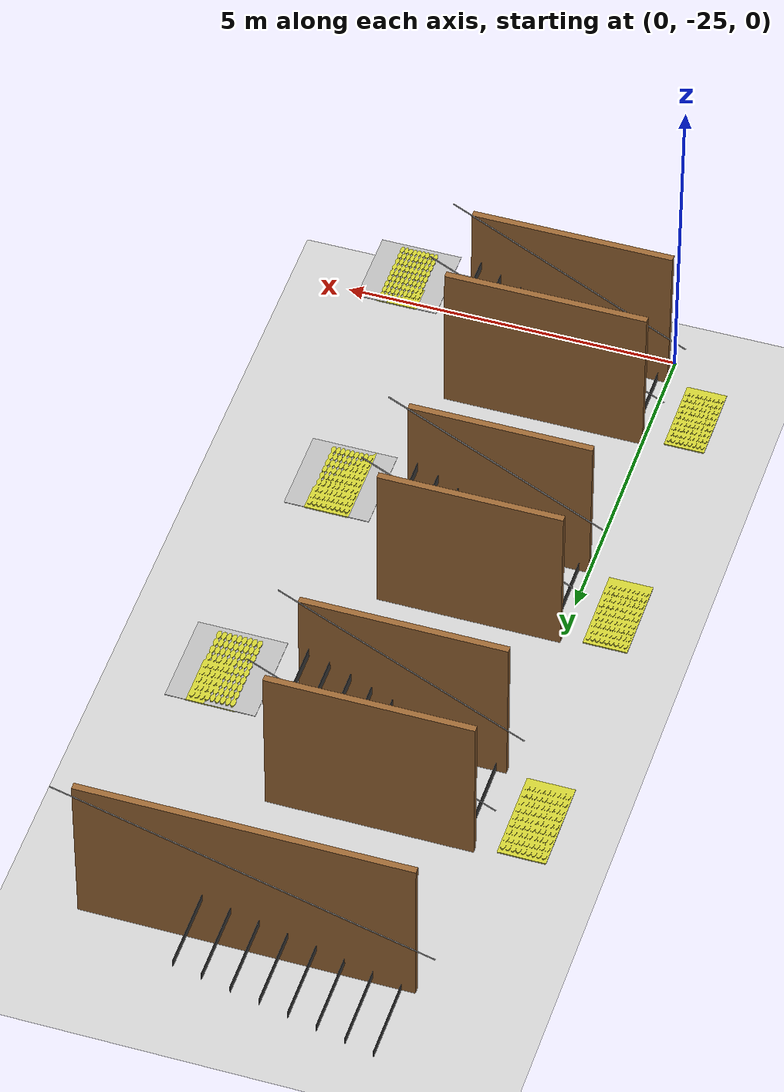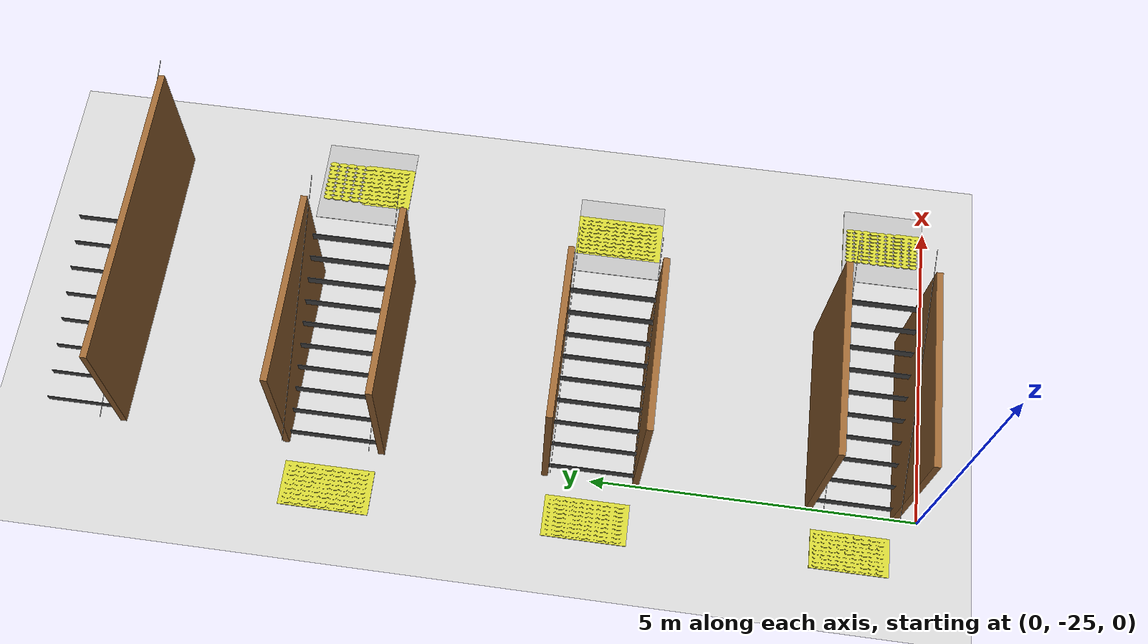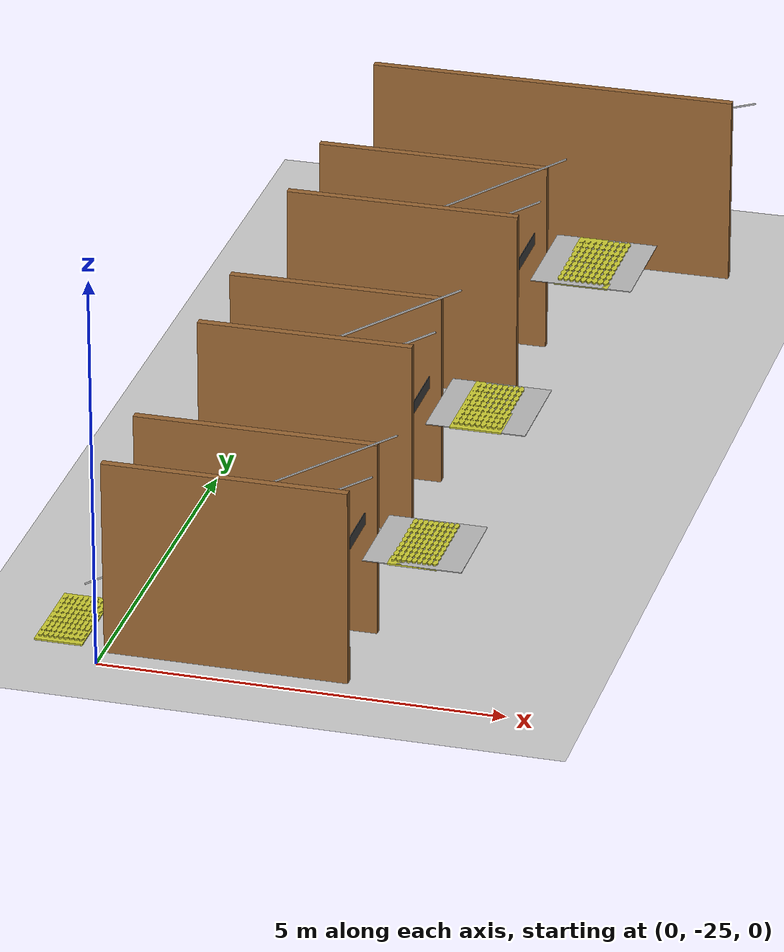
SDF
<sdf version="1.7">
 <world name="default">
  <include><uri>https://fuel.gazebosim.org/1.0/openrobotics/models/Ground%20Plane</uri></include>
  <include><uri>https://fuel.gazebosim.org/1.0/openrobotics/models/Sun</uri></include>
  <model name="handrail_handrail_334ac3bb-0b48-41e2-9271-e1b675eb571f_{'height': 0.95, 'extension_length': 0.3, 'offset_from_wall': 0.04}_aca9fab8-0f13-418a-bf42-31326757939a">
   <static>true</static>
   <pose>2.4000000000000004 -12.56 1.67 0 -0.29145679447786704 0</pose>
   <link name="link">
    <visual name="visual">
     <geometry>
      <mesh>
       <uri>model://data/world-generator/assets/handrail_unit.stl</uri>
       <scale>5.6113471242770645 0.25 0.95</scale>
      </mesh>
     </geometry>
     <material><ambient>0.7 0.7 0.7 1</ambient><diffuse>0.7 0.7 0.7 1</diffuse></material>
    </visual>
    <collision name="collision">
     <geometry><cylinder><radius>0.125</radius><length>5.6113471242770645</length></cylinder></geometry>
    </collision>
   </link>
  </model>
  <model name="riser_riser_f79dbd7d-b974-4cb8-9a55-d80f5a312021_a0191617-1c5c-4327-b5b6-209adbe51cb7">
   <static>true</static>
   <pose>0.2 -12.0 0.0 0 0 0</pose>
   <link name="link">
    <visual name="visual">
     <geometry>
      <mesh><uri>model://data/world-generator/assets/riser_unit.stl</uri><scale>1 1.2 0.12</scale></mesh>
     </geometry>
     <material><ambient>0.3 0.3 0.3 1</ambient><diffuse>0.3 0.3 0.3 1</diffuse></material>
    </visual>
    <collision name="collision"><geometry><box><size>0.01 1.2 0.12</size></box></geometry></collision>
   </link>
  </model>
  <model name="riser_riser_21510540-4ef7-4a93-9b71-e6cf3b867489_8b17b8b4-6be3-4b3f-aef8-79cb035780e8">
   <static>true</static>
   <pose>0.6000000000000001 -12.0 0.12 0 0 0</pose>
   <link name="link">
    <visual name="visual">
     <geometry>
      <mesh><uri>model://data/world-generator/assets/riser_unit.stl</uri><scale>1 1.2 0.12</scale></mesh>
     </geometry>
     <material><ambient>0.3 0.3 0.3 1</ambient><diffuse>0.3 0.3 0.3 1</diffuse></material>
    </visual>
    <collision name="collision"><geometry><box><size>0.01 1.2 0.12</size></box></geometry></collision>
   </link>
  </model>
  <model name="riser_riser_b828ba6f-296a-4e49-b509-ea6c536ff527_160650d1-56e4-458b-9ce6-3597d3bbf623">
   <static>true</static>
   <pose>1.0 -12.0 0.24 0 0 0</pose>
   <link name="link">
    <visual name="visual">
     <geometry>
      <mesh><uri>model://data/world-generator/assets/riser_unit.stl</uri><scale>1 1.2 0.12</scale></mesh>
     </geometry>
     <material><ambient>0.3 0.3 0.3 1</ambient><diffuse>0.3 0.3 0.3 1</diffuse></material>
    </visual>
    <collision name="collision"><geometry><box><size>0.01 1.2 0.12</size></box></geometry></collision>
   </link>
  </model>
  <model name="riser_riser_842ed6d8-3c86-4359-ba2c-fa71770653c6_ecccacc8-85d0-4162-8a33-9bb15306f289">
   <static>true</static>
   <pose>1.4 -12.0 0.36 0 0 0</pose>
   <link name="link">
    <visual name="visual">
     <geometry>
      <mesh><uri>model://data/world-generator/assets/riser_unit.stl</uri><scale>1 1.2 0.12</scale></mesh>
     </geometry>
     <material><ambient>0.3 0.3 0.3 1</ambient><diffuse>0.3 0.3 0.3 1</diffuse></material>
    </visual>
    <collision name="collision"><geometry><box><size>0.01 1.2 0.12</size></box></geometry></collision>
   </link>
  </model>
  <model name="riser_riser_06faf2bb-a8ae-452b-b35f-16a55bf3dbd4_0b2991ee-bf35-4310-94f1-5bc69cb6ed1d">
   <static>true</static>
   <pose>1.7999999999999998 -12.0 0.48 0 0 0</pose>
   <link name="link">
    <visual name="visual">
     <geometry>
      <mesh><uri>model://data/world-generator/assets/riser_unit.stl</uri><scale>1 1.2 0.12</scale></mesh>
     </geometry>
     <material><ambient>0.3 0.3 0.3 1</ambient><diffuse>0.3 0.3 0.3 1</diffuse></material>
    </visual>
    <collision name="collision"><geometry><box><size>0.01 1.2 0.12</size></box></geometry></collision>
   </link>
  </model>
  <model name="riser_riser_a50d08cd-4d48-4264-835a-82110000b588_0a347023-3128-418d-9c5e-b3a1e66e00ed">
   <static>true</static>
   <pose>2.1999999999999997 -12.0 0.6 0 0 0</pose>
   <link name="link">
    <visual name="visual">
     <geometry>
      <mesh><uri>model://data/world-generator/assets/riser_unit.stl</uri><scale>1 1.2 0.12</scale></mesh>
     </geometry>
     <material><ambient>0.3 0.3 0.3 1</ambient><diffuse>0.3 0.3 0.3 1</diffuse></material>
    </visual>
    <collision name="collision"><geometry><box><size>0.01 1.2 0.12</size></box></geometry></collision>
   </link>
  </model>
  <model name="riser_riser_fd55b394-43c7-4451-9429-861714e7d709_d34aa84f-d520-420e-beb8-4353c743256c">
   <static>true</static>
   <pose>2.5999999999999996 -12.0 0.72 0 0 0</pose>
   <link name="link">
    <visual name="visual">
     <geometry>
      <mesh><uri>model://data/world-generator/assets/riser_unit.stl</uri><scale>1 1.2 0.12</scale></mesh>
     </geometry>
     <material><ambient>0.3 0.3 0.3 1</ambient><diffuse>0.3 0.3 0.3 1</diffuse></material>
    </visual>
    <collision name="collision"><geometry><box><size>0.01 1.2 0.12</size></box></geometry></collision>
   </link>
  </model>
  <model name="riser_riser_63169348-e5a6-4635-9f59-b612e62b5f37_17200672-e04e-4297-bf2a-463eca0cc338">
   <static>true</static>
   <pose>2.9999999999999996 -12.0 0.84 0 0 0</pose>
   <link name="link">
    <visual name="visual">
     <geometry>
      <mesh><uri>model://data/world-generator/assets/riser_unit.stl</uri><scale>1 1.2 0.12</scale></mesh>
     </geometry>
     <material><ambient>0.3 0.3 0.3 1</ambient><diffuse>0.3 0.3 0.3 1</diffuse></material>
    </visual>
    <collision name="collision"><geometry><box><size>0.01 1.2 0.12</size></box></geometry></collision>
   </link>
  </model>
  <model name="wall_stairs_invalid_3_left_8c227ee2-c0b2-423a-83b2-b73c16e25cb3">
   <static>true</static>
   <pose>2.4000000000000004 -12.65 0.0 0 0 0.0</pose>
   <link name="link">
    <visual name="visual">
     <geometry>
      <mesh><uri>model://data/world-generator/assets/wall_unit.stl</uri><scale>4.800000000000001 1 1</scale></mesh>
     </geometry>
     <material><ambient>0.6 0.4 0.2 1</ambient><diffuse>0.6 0.4 0.2 1</diffuse></material>
    </visual>
    <collision name="collision"><geometry><box><size>4.800000000000001 0.1 1.2</size></box></geometry></collision>
   </link>
  </model>
  <model name="tactile_strip_tactile_strip_before_f980ff0a-83e7-4e4f-a77f-460416cf23fe_f4d1d756-e918-477a-826d-30c0bc44d720">
   <static>true</static>
   <pose>-0.6499999999999999 -16.0 0.0 0 0 0</pose>
   <link name="link">
    <visual name="visual">
     <geometry>
      <mesh><uri>model://data/world-generator/assets/tactile_strip_unit.stl</uri><scale>0.7 1.4 1</scale></mesh>
     </geometry>
     <material><ambient>0.8 0.8 0.2 1</ambient><diffuse>0.8 0.8 0.2 1</diffuse></material>
    </visual>
    <collision name="collision"><geometry><box><size>0.7 1.4 0.02</size></box></geometry></collision>
   </link>
  </model>
  <model name="tactile_strip_tactile_strip_after_f980ff0a-83e7-4e4f-a77f-460416cf23fe_c9d3cc64-1aaf-4768-9695-87c45fe683e1">
   <static>true</static>
   <pose>3.7999999999999994 -16.0 1.5999999999999999 0 0 0</pose>
   <link name="link">
    <visual name="visual">
     <geometry>
      <mesh><uri>model://data/world-generator/assets/tactile_strip_unit.stl</uri><scale>0.7 1.4 1</scale></mesh>
     </geometry>
     <material><ambient>0.8 0.8 0.2 1</ambient><diffuse>0.8 0.8 0.2 1</diffuse></material>
    </visual>
    <collision name="collision"><geometry><box><size>0.7 1.4 0.02</size></box></geometry></collision>
   </link>
  </model>
  <model name="handrail_handrail_f980ff0a-83e7-4e4f-a77f-460416cf23fe_{'height': 0.95, 'extension_length': 0.3, 'offset_from_wall': 0.04}_1cb58210-cbf6-4c32-b300-48deeef40401">
   <static>true</static>
   <pose>1.5 -16.66 1.75 0 -0.48995732625372834 0</pose>
   <link name="link">
    <visual name="visual">
     <geometry>
      <mesh><uri>model://data/world-generator/assets/handrail_unit.stl</uri><scale>4.0 0.25 0.95</scale></mesh>
     </geometry>
     <material><ambient>0.7 0.7 0.7 1</ambient><diffuse>0.7 0.7 0.7 1</diffuse></material>
    </visual>
    <collision name="collision">
     <geometry><cylinder><radius>0.125</radius><length>4.0</length></cylinder></geometry>
    </collision>
   </link>
  </model>
  <model name="handrail_handrail_f980ff0a-83e7-4e4f-a77f-460416cf23fe_{'height': 0.95, 'extension_length': 0.3, 'offset_from_wall': 0.04}_f57e1e76-4f27-4154-9580-fc464d5179af">
   <static>true</static>
   <pose>1.5 -15.34 1.75 0 -0.48995732625372834 0</pose>
   <link name="link">
    <visual name="visual">
     <geometry>
      <mesh><uri>model://data/world-generator/assets/handrail_unit.stl</uri><scale>4.0 0.25 0.95</scale></mesh>
     </geometry>
     <material><ambient>0.7 0.7 0.7 1</ambient><diffuse>0.7 0.7 0.7 1</diffuse></material>
    </visual>
    <collision name="collision">
     <geometry><cylinder><radius>0.125</radius><length>4.0</length></cylinder></geometry>
    </collision>
   </link>
  </model>
  <model name="riser_riser_1db3bb87-cb92-468d-a342-87a92e6d8c9d_a11fb29d-1369-4ad9-9c97-307b21da97fc">
   <static>true</static>
   <pose>0.15 -16.0 0.0 0 0 0</pose>
   <link name="link">
    <visual name="visual">
     <geometry>
      <mesh><uri>model://data/world-generator/assets/riser_unit.stl</uri><scale>1 1.4 0.16</scale></mesh>
     </geometry>
     <material><ambient>0.3 0.3 0.3 1</ambient><diffuse>0.3 0.3 0.3 1</diffuse></material>
    </visual>
    <collision name="collision"><geometry><box><size>0.01 1.4 0.16</size></box></geometry></collision>
   </link>
  </model>
  <model name="riser_riser_88b35c26-6036-4f28-8fb5-44b0a8a7183d_dd4b3f6b-e282-42fe-9318-3d303463e7ab">
   <static>true</static>
   <pose>0.44999999999999996 -16.0 0.16 0 0 0</pose>
   <link name="link">
    <visual name="visual">
     <geometry>
      <mesh><uri>model://data/world-generator/assets/riser_unit.stl</uri><scale>1 1.4 0.16</scale></mesh>
     </geometry>
     <material><ambient>0.3 0.3 0.3 1</ambient><diffuse>0.3 0.3 0.3 1</diffuse></material>
    </visual>
    <collision name="collision"><geometry><box><size>0.01 1.4 0.16</size></box></geometry></collision>
   </link>
  </model>
  <model name="riser_riser_a01ec06b-ca2b-49d8-ab6f-ffe775830d87_aa0fa8bd-2345-4b22-8f22-1ac94c31dfe3">
   <static>true</static>
   <pose>0.75 -16.0 0.32 0 0 0</pose>
   <link name="link">
    <visual name="visual">
     <geometry>
      <mesh><uri>model://data/world-generator/assets/riser_unit.stl</uri><scale>1 1.4 0.16</scale></mesh>
     </geometry>
     <material><ambient>0.3 0.3 0.3 1</ambient><diffuse>0.3 0.3 0.3 1</diffuse></material>
    </visual>
    <collision name="collision"><geometry><box><size>0.01 1.4 0.16</size></box></geometry></collision>
   </link>
  </model>
  <model name="riser_riser_ee9fe814-f8a6-47ad-b049-17e21d3dea5f_ebc83158-633d-47ed-98e0-48ae4ff6e9e4">
   <static>true</static>
   <pose>1.05 -16.0 0.48 0 0 0</pose>
   <link name="link">
    <visual name="visual">
     <geometry>
      <mesh><uri>model://data/world-generator/assets/riser_unit.stl</uri><scale>1 1.4 0.16</scale></mesh>
     </geometry>
     <material><ambient>0.3 0.3 0.3 1</ambient><diffuse>0.3 0.3 0.3 1</diffuse></material>
    </visual>
    <collision name="collision"><geometry><box><size>0.01 1.4 0.16</size></box></geometry></collision>
   </link>
  </model>
  <model name="riser_riser_ed288e78-264d-450a-9d46-a66aeb1e32d1_4d4afe49-08f4-4eb1-98e7-8fc1a9320f2b">
   <static>true</static>
   <pose>1.35 -16.0 0.64 0 0 0</pose>
   <link name="link">
    <visual name="visual">
     <geometry>
      <mesh><uri>model://data/world-generator/assets/riser_unit.stl</uri><scale>1 1.4 0.16</scale></mesh>
     </geometry>
     <material><ambient>0.3 0.3 0.3 1</ambient><diffuse>0.3 0.3 0.3 1</diffuse></material>
    </visual>
    <collision name="collision"><geometry><box><size>0.01 1.4 0.16</size></box></geometry></collision>
   </link>
  </model>
  <model name="riser_riser_3ddf61e4-0bbf-4f8a-95f0-f3d46b866e3c_efdc3010-9175-4f2b-9fc8-2595e9986a90">
   <static>true</static>
   <pose>1.6500000000000001 -16.0 0.8 0 0 0</pose>
   <link name="link">
    <visual name="visual">
     <geometry>
      <mesh><uri>model://data/world-generator/assets/riser_unit.stl</uri><scale>1 1.4 0.16</scale></mesh>
     </geometry>
     <material><ambient>0.3 0.3 0.3 1</ambient><diffuse>0.3 0.3 0.3 1</diffuse></material>
    </visual>
    <collision name="collision"><geometry><box><size>0.01 1.4 0.16</size></box></geometry></collision>
   </link>
  </model>
  <model name="riser_riser_c876d133-7099-4fd6-a2e0-2b4f10240c09_cdbbe05a-69ec-4d2c-aea9-51be4c1e96a7">
   <static>true</static>
   <pose>1.9500000000000002 -16.0 0.9600000000000001 0 0 0</pose>
   <link name="link">
    <visual name="visual">
     <geometry>
      <mesh><uri>model://data/world-generator/assets/riser_unit.stl</uri><scale>1 1.4 0.16</scale></mesh>
     </geometry>
     <material><ambient>0.3 0.3 0.3 1</ambient><diffuse>0.3 0.3 0.3 1</diffuse></material>
    </visual>
    <collision name="collision"><geometry><box><size>0.01 1.4 0.16</size></box></geometry></collision>
   </link>
  </model>
  <model name="riser_riser_84be6132-741f-4fec-a031-4b10a25c0bce_9439507c-3eea-4be6-8208-6b8e9fff62e7">
   <static>true</static>
   <pose>2.25 -16.0 1.12 0 0 0</pose>
   <link name="link">
    <visual name="visual">
     <geometry>
      <mesh><uri>model://data/world-generator/assets/riser_unit.stl</uri><scale>1 1.4 0.16</scale></mesh>
     </geometry>
     <material><ambient>0.3 0.3 0.3 1</ambient><diffuse>0.3 0.3 0.3 1</diffuse></material>
    </visual>
    <collision name="collision"><geometry><box><size>0.01 1.4 0.16</size></box></geometry></collision>
   </link>
  </model>
  <model name="riser_riser_c882f34b-14e4-40c0-ad63-9f751554914e_6eddcc3c-42fd-4fb4-946f-3e9c09017f69">
   <static>true</static>
   <pose>2.55 -16.0 1.28 0 0 0</pose>
   <link name="link">
    <visual name="visual">
     <geometry>
      <mesh><uri>model://data/world-generator/assets/riser_unit.stl</uri><scale>1 1.4 0.16</scale></mesh>
     </geometry>
     <material><ambient>0.3 0.3 0.3 1</ambient><diffuse>0.3 0.3 0.3 1</diffuse></material>
    </visual>
    <collision name="collision"><geometry><box><size>0.01 1.4 0.16</size></box></geometry></collision>
   </link>
  </model>
  <model name="riser_riser_09f16ea2-fef2-4b60-8272-19d955b08c25_8408a1b2-b086-4b69-b4c3-79553a4bfa87">
   <static>true</static>
   <pose>2.8499999999999996 -16.0 1.44 0 0 0</pose>
   <link name="link">
    <visual name="visual">
     <geometry>
      <mesh><uri>model://data/world-generator/assets/riser_unit.stl</uri><scale>1 1.4 0.16</scale></mesh>
     </geometry>
     <material><ambient>0.3 0.3 0.3 1</ambient><diffuse>0.3 0.3 0.3 1</diffuse></material>
    </visual>
    <collision name="collision"><geometry><box><size>0.01 1.4 0.16</size></box></geometry></collision>
   </link>
  </model>
  <model name="wall_stairs_invalid_4_left_a44f4d51-66cd-4ce5-b765-ab3804b780f1">
   <static>true</static>
   <pose>1.5 -16.75 0.0 0 0 0.0</pose>
   <link name="link">
    <visual name="visual">
     <geometry>
      <mesh><uri>model://data/world-generator/assets/wall_unit.stl</uri><scale>3.0 1 1</scale></mesh>
     </geometry>
     <material><ambient>0.6 0.4 0.2 1</ambient><diffuse>0.6 0.4 0.2 1</diffuse></material>
    </visual>
    <collision name="collision"><geometry><box><size>3.0 0.1 1.2</size></box></geometry></collision>
   </link>
  </model>
  <model name="wall_stairs_invalid_4_right_65ad76f0-6225-4ed8-9b1c-0419573217d4">
   <static>true</static>
   <pose>1.5 -15.25 0.0 0 0 0.0</pose>
   <link name="link">
    <visual name="visual">
     <geometry>
      <mesh><uri>model://data/world-generator/assets/wall_unit.stl</uri><scale>3.0 1 1</scale></mesh>
     </geometry>
     <material><ambient>0.6 0.4 0.2 1</ambient><diffuse>0.6 0.4 0.2 1</diffuse></material>
    </visual>
    <collision name="collision"><geometry><box><size>3.0 0.1 1.2</size></box></geometry></collision>
   </link>
  </model>
  <model name="platform_stairs_invalid_4_landing_c2bdfd01-fa9d-412c-a99a-f1f230a26d4c">
   <static>true</static>
   <pose>3.7999999999999994 -16.0 1.5999999999999999 0 0 0</pose>
   <link name="link">
    <visual name="visual">
     <geometry>
      <mesh>
       <uri>model://data/world-generator/assets/platform_unit.stl</uri>
       <scale>1.2999999999999998 1.4 1</scale>
      </mesh>
     </geometry>
    </visual>
    <collision name="collision">
     <geometry><box><size>1.2999999999999998 1.4 0.01</size></box></geometry>
    </collision>
   </link>
  </model>
  <model name="tactile_strip_tactile_strip_before_17d97e36-98d3-48f7-ad10-50356535565b_ecd95b5c-7429-4b46-bb8f-fcdc3d8025f3">
   <static>true</static>
   <pose>-0.625 -20.0 0.0 0 0 0</pose>
   <link name="link">
    <visual name="visual">
     <geometry>
      <mesh><uri>model://data/world-generator/assets/tactile_strip_unit.stl</uri><scale>0.65 1.3 1</scale></mesh>
     </geometry>
     <material><ambient>0.8 0.8 0.2 1</ambient><diffuse>0.8 0.8 0.2 1</diffuse></material>
    </visual>
    <collision name="collision"><geometry><box><size>0.65 1.3 0.02</size></box></geometry></collision>
   </link>
  </model>
  <model name="tactile_strip_tactile_strip_after_17d97e36-98d3-48f7-ad10-50356535565b_b5370adf-9b1d-4676-9c9c-fc94aae698f5">
   <static>true</static>
   <pose>3.4749999999999996 -20.0 1.44 0 0 0</pose>
   <link name="link">
    <visual name="visual">
     <geometry>
      <mesh><uri>model://data/world-generator/assets/tactile_strip_unit.stl</uri><scale>0.65 1.3 1</scale></mesh>
     </geometry>
     <material><ambient>0.8 0.8 0.2 1</ambient><diffuse>0.8 0.8 0.2 1</diffuse></material>
    </visual>
    <collision name="collision"><geometry><box><size>0.65 1.3 0.02</size></box></geometry></collision>
   </link>
  </model>
  <model name="handrail_handrail_17d97e36-98d3-48f7-ad10-50356535565b_{'height': 1.1, 'extension_length': 0.3, 'offset_from_wall': 0.04}_0c5d9911-2ebc-4bc7-96f0-71d6635490e0">
   <static>true</static>
   <pose>1.3499999999999999 -20.61 1.82 0 -0.48995732625372834 0</pose>
   <link name="link">
    <visual name="visual">
     <geometry>
      <mesh>
       <uri>model://data/world-generator/assets/handrail_unit.stl</uri>
       <scale>3.6599999999999997 0.25 1.1</scale>
      </mesh>
     </geometry>
     <material><ambient>0.7 0.7 0.7 1</ambient><diffuse>0.7 0.7 0.7 1</diffuse></material>
    </visual>
    <collision name="collision">
     <geometry><cylinder><radius>0.125</radius><length>3.6599999999999997</length></cylinder></geometry>
    </collision>
   </link>
  </model>
  <model name="handrail_handrail_17d97e36-98d3-48f7-ad10-50356535565b_{'height': 1.1, 'extension_length': 0.3, 'offset_from_wall': 0.04}_905bee03-385a-4e38-8609-c5ccc538856e">
   <static>true</static>
   <pose>1.3499999999999999 -19.39 1.82 0 -0.48995732625372834 0</pose>
   <link name="link">
    <visual name="visual">
     <geometry>
      <mesh>
       <uri>model://data/world-generator/assets/handrail_unit.stl</uri>
       <scale>3.6599999999999997 0.25 1.1</scale>
      </mesh>
     </geometry>
     <material><ambient>0.7 0.7 0.7 1</ambient><diffuse>0.7 0.7 0.7 1</diffuse></material>
    </visual>
    <collision name="collision">
     <geometry><cylinder><radius>0.125</radius><length>3.6599999999999997</length></cylinder></geometry>
    </collision>
   </link>
  </model>
  <model name="riser_riser_137b0e59-a008-4633-bdee-bb1a7d8c9170_21d0a4cc-1b57-49a1-bc43-f871a286d02f">
   <static>true</static>
   <pose>0.15 -20.0 0.0 0 0 0</pose>
   <link name="link">
    <visual name="visual">
     <geometry>
      <mesh><uri>model://data/world-generator/assets/riser_unit.stl</uri><scale>1 1.3 0.16</scale></mesh>
     </geometry>
     <material><ambient>0.3 0.3 0.3 1</ambient><diffuse>0.3 0.3 0.3 1</diffuse></material>
    </visual>
    <collision name="collision"><geometry><box><size>0.01 1.3 0.16</size></box></geometry></collision>
   </link>
  </model>
  <model name="riser_riser_bdcc62ba-e1b1-455b-8eca-cc587fe8a232_1645f188-4b3a-4723-9e87-ff1708fc138d">
   <static>true</static>
   <pose>0.44999999999999996 -20.0 0.16 0 0 0</pose>
   <link name="link">
    <visual name="visual">
     <geometry>
      <mesh><uri>model://data/world-generator/assets/riser_unit.stl</uri><scale>1 1.3 0.16</scale></mesh>
     </geometry>
     <material><ambient>0.3 0.3 0.3 1</ambient><diffuse>0.3 0.3 0.3 1</diffuse></material>
    </visual>
    <collision name="collision"><geometry><box><size>0.01 1.3 0.16</size></box></geometry></collision>
   </link>
  </model>
  <model name="riser_riser_66db1ea3-4a97-4456-a0d7-7994261e3e64_29c66f40-6045-4efa-a524-1afe57abbeb0">
   <static>true</static>
   <pose>0.75 -20.0 0.32 0 0 0</pose>
   <link name="link">
    <visual name="visual">
     <geometry>
      <mesh><uri>model://data/world-generator/assets/riser_unit.stl</uri><scale>1 1.3 0.16</scale></mesh>
     </geometry>
     <material><ambient>0.3 0.3 0.3 1</ambient><diffuse>0.3 0.3 0.3 1</diffuse></material>
    </visual>
    <collision name="collision"><geometry><box><size>0.01 1.3 0.16</size></box></geometry></collision>
   </link>
  </model>
  <model name="riser_riser_94cd9eb9-e1f0-424c-8654-578d6db4f332_9c316746-e40c-42de-b974-c6c38b24c356">
   <static>true</static>
   <pose>1.05 -20.0 0.48 0 0 0</pose>
   <link name="link">
    <visual name="visual">
     <geometry>
      <mesh><uri>model://data/world-generator/assets/riser_unit.stl</uri><scale>1 1.3 0.16</scale></mesh>
     </geometry>
     <material><ambient>0.3 0.3 0.3 1</ambient><diffuse>0.3 0.3 0.3 1</diffuse></material>
    </visual>
    <collision name="collision"><geometry><box><size>0.01 1.3 0.16</size></box></geometry></collision>
   </link>
  </model>
  <model name="riser_riser_51eec882-dac0-46bf-b1c7-6e1d90e02942_10997c99-a3b5-496f-aee3-34d15c7764ec">
   <static>true</static>
   <pose>1.35 -20.0 0.64 0 0 0</pose>
   <link name="link">
    <visual name="visual">
     <geometry>
      <mesh><uri>model://data/world-generator/assets/riser_unit.stl</uri><scale>1 1.3 0.16</scale></mesh>
     </geometry>
     <material><ambient>0.3 0.3 0.3 1</ambient><diffuse>0.3 0.3 0.3 1</diffuse></material>
    </visual>
    <collision name="collision"><geometry><box><size>0.01 1.3 0.16</size></box></geometry></collision>
   </link>
  </model>
  <model name="riser_riser_82f6e962-368e-4459-837c-626dca24f584_ccb75082-a873-43da-a75f-3f6454a06a97">
   <static>true</static>
   <pose>1.6500000000000001 -20.0 0.8 0 0 0</pose>
   <link name="link">
    <visual name="visual">
     <geometry>
      <mesh><uri>model://data/world-generator/assets/riser_unit.stl</uri><scale>1 1.3 0.16</scale></mesh>
     </geometry>
     <material><ambient>0.3 0.3 0.3 1</ambient><diffuse>0.3 0.3 0.3 1</diffuse></material>
    </visual>
    <collision name="collision"><geometry><box><size>0.01 1.3 0.16</size></box></geometry></collision>
   </link>
  </model>
  <model name="riser_riser_c8289034-6faf-4676-bfbb-874d23f0d86a_b2eaaa3d-3aac-4211-a76b-1f4db37555b9">
   <static>true</static>
   <pose>1.9500000000000002 -20.0 0.9600000000000001 0 0 0</pose>
   <link name="link">
    <visual name="visual">
     <geometry>
      <mesh><uri>model://data/world-generator/assets/riser_unit.stl</uri><scale>1 1.3 0.16</scale></mesh>
     </geometry>
     <material><ambient>0.3 0.3 0.3 1</ambient><diffuse>0.3 0.3 0.3 1</diffuse></material>
    </visual>
    <collision name="collision"><geometry><box><size>0.01 1.3 0.16</size></box></geometry></collision>
   </link>
  </model>
  <model name="riser_riser_3601f0ac-f078-436f-b78f-3630b17f7193_7124fa93-f64e-4806-8bf2-9a58033023be">
   <static>true</static>
   <pose>2.25 -20.0 1.12 0 0 0</pose>
   <link name="link">
    <visual name="visual">
     <geometry>
      <mesh><uri>model://data/world-generator/assets/riser_unit.stl</uri><scale>1 1.3 0.16</scale></mesh>
     </geometry>
     <material><ambient>0.3 0.3 0.3 1</ambient><diffuse>0.3 0.3 0.3 1</diffuse></material>
    </visual>
    <collision name="collision"><geometry><box><size>0.01 1.3 0.16</size></box></geometry></collision>
   </link>
  </model>
  <model name="riser_riser_ae143249-31c4-421c-a638-cd0baa6722ac_1386e4b8-d808-4e03-abcc-78edf9fe164e">
   <static>true</static>
   <pose>2.55 -20.0 1.28 0 0 0</pose>
   <link name="link">
    <visual name="visual">
     <geometry>
      <mesh><uri>model://data/world-generator/assets/riser_unit.stl</uri><scale>1 1.3 0.16</scale></mesh>
     </geometry>
     <material><ambient>0.3 0.3 0.3 1</ambient><diffuse>0.3 0.3 0.3 1</diffuse></material>
    </visual>
    <collision name="collision"><geometry><box><size>0.01 1.3 0.16</size></box></geometry></collision>
   </link>
  </model>
  <model name="wall_stairs_invalid_5_left_76e33e90-2140-4e45-ac1c-8b3dace37bd2">
   <static>true</static>
   <pose>1.3499999999999999 -20.7 0.0 0 0 0.0</pose>
   <link name="link">
    <visual name="visual">
     <geometry>
      <mesh><uri>model://data/world-generator/assets/wall_unit.stl</uri><scale>2.6999999999999997 1 1</scale></mesh>
     </geometry>
     <material><ambient>0.6 0.4 0.2 1</ambient><diffuse>0.6 0.4 0.2 1</diffuse></material>
    </visual>
    <collision name="collision">
     <geometry><box><size>2.6999999999999997 0.1 1.2</size></box></geometry>
    </collision>
   </link>
  </model>
  <model name="wall_stairs_invalid_5_right_add77634-5a95-49e4-b9ae-f48edf288099">
   <static>true</static>
   <pose>1.3499999999999999 -19.3 0.0 0 0 0.0</pose>
   <link name="link">
    <visual name="visual">
     <geometry>
      <mesh><uri>model://data/world-generator/assets/wall_unit.stl</uri><scale>2.6999999999999997 1 1</scale></mesh>
     </geometry>
     <material><ambient>0.6 0.4 0.2 1</ambient><diffuse>0.6 0.4 0.2 1</diffuse></material>
    </visual>
    <collision name="collision">
     <geometry><box><size>2.6999999999999997 0.1 1.2</size></box></geometry>
    </collision>
   </link>
  </model>
  <model name="platform_stairs_invalid_5_landing_11b71142-f572-496e-948b-2a8f371c93f8">
   <static>true</static>
   <pose>3.4749999999999996 -20.0 1.44 0 0 0</pose>
   <link name="link">
    <visual name="visual">
     <geometry>
      <mesh><uri>model://data/world-generator/assets/platform_unit.stl</uri><scale>1.25 1.3 1</scale></mesh>
     </geometry>
    </visual>
    <collision name="collision"><geometry><box><size>1.25 1.3 0.01</size></box></geometry></collision>
   </link>
  </model>
  <model name="tactile_strip_tactile_strip_before_2b56a6f0-3218-41c2-86fc-c0dd96b93221_ab39e7c2-6d45-466a-8c99-5f4edc02b914">
   <static>true</static>
   <pose>-0.6 -24.0 0.0 0 0 0</pose>
   <link name="link">
    <visual name="visual">
     <geometry>
      <mesh><uri>model://data/world-generator/assets/tactile_strip_unit.stl</uri><scale>0.6 1.2 1</scale></mesh>
     </geometry>
     <material><ambient>0.8 0.8 0.2 1</ambient><diffuse>0.8 0.8 0.2 1</diffuse></material>
    </visual>
    <collision name="collision"><geometry><box><size>0.6 1.2 0.02</size></box></geometry></collision>
   </link>
  </model>
  <model name="tactile_strip_tactile_strip_after_2b56a6f0-3218-41c2-86fc-c0dd96b93221_484cfbb2-44c5-42c4-9bce-44c3e6b859d5">
   <static>true</static>
   <pose>3.749999999999999 -24.0 1.5999999999999999 0 0 0</pose>
   <link name="link">
    <visual name="visual">
     <geometry>
      <mesh><uri>model://data/world-generator/assets/tactile_strip_unit.stl</uri><scale>0.6 1.2 1</scale></mesh>
     </geometry>
     <material><ambient>0.8 0.8 0.2 1</ambient><diffuse>0.8 0.8 0.2 1</diffuse></material>
    </visual>
    <collision name="collision"><geometry><box><size>0.6 1.2 0.02</size></box></geometry></collision>
   </link>
  </model>
  <model name="handrail_handrail_2b56a6f0-3218-41c2-86fc-c0dd96b93221_{'height': 0.95, 'extension_length': 0.3, 'offset_from_wall': 0.04}_a9e6002a-669d-4ecb-bc29-3dc651953296">
   <static>true</static>
   <pose>1.5 -24.560000000000002 1.75 0 -0.48995732625372834 0</pose>
   <link name="link">
    <visual name="visual">
     <geometry>
      <mesh><uri>model://data/world-generator/assets/handrail_unit.stl</uri><scale>4.0 0.25 0.95</scale></mesh>
     </geometry>
     <material><ambient>0.7 0.7 0.7 1</ambient><diffuse>0.7 0.7 0.7 1</diffuse></material>
    </visual>
    <collision name="collision">
     <geometry><cylinder><radius>0.125</radius><length>4.0</length></cylinder></geometry>
    </collision>
   </link>
  </model>
  <model name="handrail_handrail_2b56a6f0-3218-41c2-86fc-c0dd96b93221_{'height': 0.95, 'extension_length': 0.3, 'offset_from_wall': 0.04}_4619990d-1c4b-4b35-a17a-43257b215d89">
   <static>true</static>
   <pose>1.5 -23.439999999999998 1.75 0 -0.48995732625372834 0</pose>
   <link name="link">
    <visual name="visual">
     <geometry>
      <mesh><uri>model://data/world-generator/assets/handrail_unit.stl</uri><scale>4.0 0.25 0.95</scale></mesh>
     </geometry>
     <material><ambient>0.7 0.7 0.7 1</ambient><diffuse>0.7 0.7 0.7 1</diffuse></material>
    </visual>
    <collision name="collision">
     <geometry><cylinder><radius>0.125</radius><length>4.0</length></cylinder></geometry>
    </collision>
   </link>
  </model>
  <model name="riser_riser_d97b4f4f-f397-46a4-9e12-d0b798156274_2511c685-f05d-43fe-a0de-04f69aff0d28">
   <static>true</static>
   <pose>0.15 -24.0 0.0 0 0 0</pose>
   <link name="link">
    <visual name="visual">
     <geometry>
      <mesh><uri>model://data/world-generator/assets/riser_unit.stl</uri><scale>1 1.2 0.16</scale></mesh>
     </geometry>
     <material><ambient>0.3 0.3 0.3 1</ambient><diffuse>0.3 0.3 0.3 1</diffuse></material>
    </visual>
    <collision name="collision"><geometry><box><size>0.01 1.2 0.16</size></box></geometry></collision>
   </link>
  </model>
  <model name="riser_riser_ef993d64-85e9-4170-8a9c-85f5642de05d_795ccfd2-acf3-4a48-bd07-b45424d03d1f">
   <static>true</static>
   <pose>0.44999999999999996 -24.0 0.16 0 0 0</pose>
   <link name="link">
    <visual name="visual">
     <geometry>
      <mesh><uri>model://data/world-generator/assets/riser_unit.stl</uri><scale>1 1.2 0.16</scale></mesh>
     </geometry>
     <material><ambient>0.3 0.3 0.3 1</ambient><diffuse>0.3 0.3 0.3 1</diffuse></material>
    </visual>
    <collision name="collision"><geometry><box><size>0.01 1.2 0.16</size></box></geometry></collision>
   </link>
  </model>
  <model name="riser_riser_8685c501-67ff-4af5-a15f-ef427bc54a6c_cfacc1d7-427c-4c7c-b54b-95d0f8b4bd8f">
   <static>true</static>
   <pose>0.75 -24.0 0.32 0 0 0</pose>
   <link name="link">
    <visual name="visual">
     <geometry>
      <mesh><uri>model://data/world-generator/assets/riser_unit.stl</uri><scale>1 1.2 0.16</scale></mesh>
     </geometry>
     <material><ambient>0.3 0.3 0.3 1</ambient><diffuse>0.3 0.3 0.3 1</diffuse></material>
    </visual>
    <collision name="collision"><geometry><box><size>0.01 1.2 0.16</size></box></geometry></collision>
   </link>
  </model>
  <model name="riser_riser_9a999dcb-689b-4e8f-a6d4-eb10e45c4c38_7a4e64af-983f-4c0a-b6eb-f033b323e839">
   <static>true</static>
   <pose>1.05 -24.0 0.48 0 0 0</pose>
   <link name="link">
    <visual name="visual">
     <geometry>
      <mesh><uri>model://data/world-generator/assets/riser_unit.stl</uri><scale>1 1.2 0.16</scale></mesh>
     </geometry>
     <material><ambient>0.3 0.3 0.3 1</ambient><diffuse>0.3 0.3 0.3 1</diffuse></material>
    </visual>
    <collision name="collision"><geometry><box><size>0.01 1.2 0.16</size></box></geometry></collision>
   </link>
  </model>
  <model name="riser_riser_25e06982-c762-49f9-bba1-0682aa81db44_3d307644-2872-4bde-8773-8f870a574d39">
   <static>true</static>
   <pose>1.35 -24.0 0.64 0 0 0</pose>
   <link name="link">
    <visual name="visual">
     <geometry>
      <mesh><uri>model://data/world-generator/assets/riser_unit.stl</uri><scale>1 1.2 0.16</scale></mesh>
     </geometry>
     <material><ambient>0.3 0.3 0.3 1</ambient><diffuse>0.3 0.3 0.3 1</diffuse></material>
    </visual>
    <collision name="collision"><geometry><box><size>0.01 1.2 0.16</size></box></geometry></collision>
   </link>
  </model>
  <model name="riser_riser_bcf193ca-0653-46fd-818a-25a428bd56c7_4809e0ed-769a-4753-a58b-ee6fc4cf8f11">
   <static>true</static>
   <pose>1.6500000000000001 -24.0 0.8 0 0 0</pose>
   <link name="link">
    <visual name="visual">
     <geometry>
      <mesh><uri>model://data/world-generator/assets/riser_unit.stl</uri><scale>1 1.2 0.16</scale></mesh>
     </geometry>
     <material><ambient>0.3 0.3 0.3 1</ambient><diffuse>0.3 0.3 0.3 1</diffuse></material>
    </visual>
    <collision name="collision"><geometry><box><size>0.01 1.2 0.16</size></box></geometry></collision>
   </link>
  </model>
  <model name="riser_riser_6e2615db-fac6-40ff-a2f9-d1fff339742d_9e1edd77-7b10-4257-a576-7c9a5de44334">
   <static>true</static>
   <pose>1.9500000000000002 -24.0 0.9600000000000001 0 0 0</pose>
   <link name="link">
    <visual name="visual">
     <geometry>
      <mesh><uri>model://data/world-generator/assets/riser_unit.stl</uri><scale>1 1.2 0.16</scale></mesh>
     </geometry>
     <material><ambient>0.3 0.3 0.3 1</ambient><diffuse>0.3 0.3 0.3 1</diffuse></material>
    </visual>
    <collision name="collision"><geometry><box><size>0.01 1.2 0.16</size></box></geometry></collision>
   </link>
  </model>
  <model name="riser_riser_6fc4a8ee-3f2b-41bc-81a7-ce01f9a3b591_518ebb94-5799-44c6-9c8a-98c373638db6">
   <static>true</static>
   <pose>2.25 -24.0 1.12 0 0 0</pose>
   <link name="link">
    <visual name="visual">
     <geometry>
      <mesh><uri>model://data/world-generator/assets/riser_unit.stl</uri><scale>1 1.2 0.16</scale></mesh>
     </geometry>
     <material><ambient>0.3 0.3 0.3 1</ambient><diffuse>0.3 0.3 0.3 1</diffuse></material>
    </visual>
    <collision name="collision"><geometry><box><size>0.01 1.2 0.16</size></box></geometry></collision>
   </link>
  </model>
  <model name="riser_riser_9b87474a-5d53-451e-b8ad-8006fccf50a9_0f621de5-19eb-44c3-8f57-9d3ef581ba79">
   <static>true</static>
   <pose>2.55 -24.0 1.28 0 0 0</pose>
   <link name="link">
    <visual name="visual">
     <geometry>
      <mesh><uri>model://data/world-generator/assets/riser_unit.stl</uri><scale>1 1.2 0.16</scale></mesh>
     </geometry>
     <material><ambient>0.3 0.3 0.3 1</ambient><diffuse>0.3 0.3 0.3 1</diffuse></material>
    </visual>
    <collision name="collision"><geometry><box><size>0.01 1.2 0.16</size></box></geometry></collision>
   </link>
  </model>
  <model name="riser_riser_1abbdad6-8cd8-4770-a7f4-954f61e80c08_34b9deb2-600a-46f0-baa8-6533730efb7f">
   <static>true</static>
   <pose>2.8499999999999996 -24.0 1.44 0 0 0</pose>
   <link name="link">
    <visual name="visual">
     <geometry>
      <mesh><uri>model://data/world-generator/assets/riser_unit.stl</uri><scale>1 1.2 0.16</scale></mesh>
     </geometry>
     <material><ambient>0.3 0.3 0.3 1</ambient><diffuse>0.3 0.3 0.3 1</diffuse></material>
    </visual>
    <collision name="collision"><geometry><box><size>0.01 1.2 0.16</size></box></geometry></collision>
   </link>
  </model>
  <model name="wall_stairs_invalid_6_left_a48621f0-25cb-40c7-8805-a06096a0a025">
   <static>true</static>
   <pose>1.5 -24.650000000000002 0.0 0 0 0.0</pose>
   <link name="link">
    <visual name="visual">
     <geometry>
      <mesh><uri>model://data/world-generator/assets/wall_unit.stl</uri><scale>3.0 1 1</scale></mesh>
     </geometry>
     <material><ambient>0.6 0.4 0.2 1</ambient><diffuse>0.6 0.4 0.2 1</diffuse></material>
    </visual>
    <collision name="collision"><geometry><box><size>3.0 0.1 1.2</size></box></geometry></collision>
   </link>
  </model>
  <model name="wall_stairs_invalid_6_right_9d2c1025-accf-475e-bd42-4c6b7cce303e">
   <static>true</static>
   <pose>1.5 -23.349999999999998 0.0 0 0 0.0</pose>
   <link name="link">
    <visual name="visual">
     <geometry>
      <mesh><uri>model://data/world-generator/assets/wall_unit.stl</uri><scale>3.0 1 1</scale></mesh>
     </geometry>
     <material><ambient>0.6 0.4 0.2 1</ambient><diffuse>0.6 0.4 0.2 1</diffuse></material>
    </visual>
    <collision name="collision"><geometry><box><size>3.0 0.1 1.2</size></box></geometry></collision>
   </link>
  </model>
  <model name="platform_stairs_invalid_6_landing_09b89121-1503-4d54-a783-75b95de204b6">
   <static>true</static>
   <pose>3.749999999999999 -24.0 1.5999999999999999 0 0 0</pose>
   <link name="link">
    <visual name="visual">
     <geometry>
      <mesh><uri>model://data/world-generator/assets/platform_unit.stl</uri><scale>1.2 1.2 1</scale></mesh>
     </geometry>
    </visual>
    <collision name="collision"><geometry><box><size>1.2 1.2 0.01</size></box></geometry></collision>
   </link>
  </model>
 </world>
</sdf>
